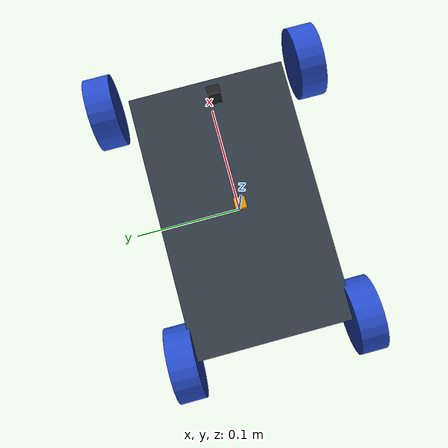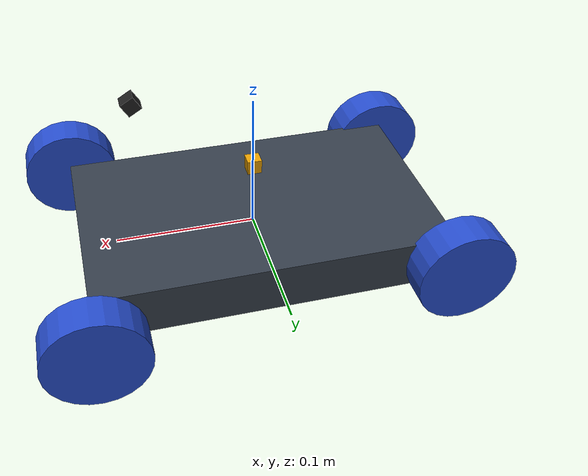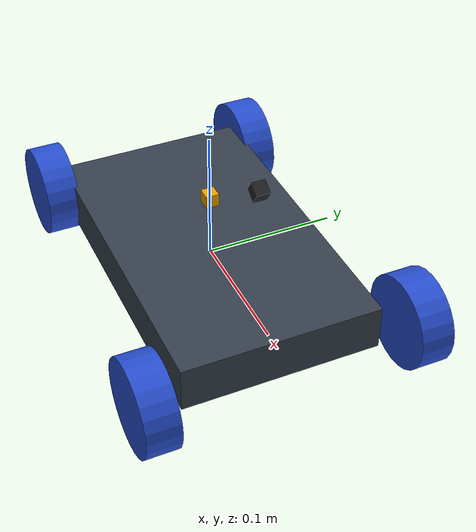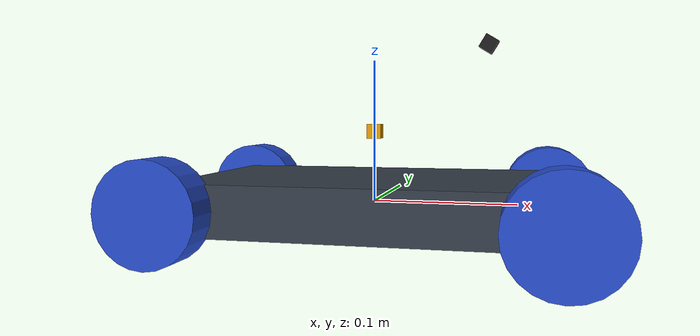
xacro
<?xml version="1.0" ?>
<robot name="rover" xmlns:xacro="http://www.ros.org/wiki/xacro">
  <material name="black">
    <color rgba="0.0 0.0 0.0 1.0"/>
  </material>
  <material name="blue">
    <color rgba="0.203125 0.23828125 0.28515625 1.0"/>
  </material>
  <material name="green">
    <color rgba="0.0 0.8 0.0 1.0"/>
  </material>
  <material name="grey">
    <color rgba="0.2 0.2 0.2 1.0"/>
  </material>
  <material name="orange">
    <color rgba="1.0 0.423529411765 0.0392156862745 1.0"/>
  </material>
  <material name="brown">
    <color rgba="0.870588235294 0.811764705882 0.764705882353 1.0"/>
  </material>
  <material name="red">
    <color rgba="0.80078125 0.12890625 0.1328125 1.0"/>
  </material>
  <material name="white">
    <color rgba="1.0 1.0 1.0 1.0"/>
  </material>

  <gazebo reference="link_chassis">
    <material>Gazebo/Orange</material>
  </gazebo>
  <gazebo reference="link_back_left_wheel">
    <material>Gazebo/Blue</material>
  </gazebo>
  <gazebo reference="link_back_right_wheel">
    <material>Gazebo/Blue</material>
  </gazebo>
  <gazebo reference="link_front_left_wheel">
    <material>Gazebo/Blue</material>
  </gazebo>
  <gazebo reference="link_front_right_wheel">
    <material>Gazebo/Blue</material>
  </gazebo>
  <gazebo reference="link_front_left_hinge">
    <material>Gazebo/Orange</material>
  </gazebo>
  <gazebo reference="link_front_right_hinge">
    <material>Gazebo/Orange</material>
  </gazebo>
  <gazebo reference="camera_link">
    <material>Gazebo/Black</material>
	</gazebo>

  <!-- camera -->
  <gazebo reference="camera_link">
    <sensor type="camera" name="main_cam">
      <update_rate>30.0</update_rate>
      <camera name="head">
        <horizontal_fov>1.777778</horizontal_fov>
        <image>
          <width>960</width>
          <height>616</height>
          <format>R8G8B8</format>
        </image>
        <clip>
          <near>0.02</near>
          <far>300</far>
        </clip>
        <noise>
          <type>gaussian</type>
          <!-- Noise is sampled independently per pixel on each frame.
               That pixel's noise value is added to each of its color
               channels, which at that point lie in the range [0,1]. -->
          <mean>0.0</mean>
          <stddev>0.007</stddev>
        </noise>
      </camera>
      <plugin name="camera_controller" filename="libgazebo_ros_camera.so">
        <alwaysOn>true</alwaysOn>
        <updateRate>60.0</updateRate>
        <cameraName>camera1</cameraName>
        <imageTopicName>image_raw</imageTopicName>
        <cameraInfoTopicName>camera_info</cameraInfoTopicName>
        <frameName>camera_link</frameName>
        <hackBaseline>0.07</hackBaseline>
        <distortionK1>0.0</distortionK1>
        <distortionK2>0.0</distortionK2>
        <distortionK3>0.0</distortionK3>
        <distortionT1>0.0</distortionT1>
        <distortionT2>0.0</distortionT2>
      </plugin>
    </sensor>
  </gazebo>

<!--imu plugin-->
<gazebo reference="imu_link">
<gravity>true</gravity>
<sensor name="imu_sensor" type="imu">
<always_on>true</always_on>
<update_rate>100</update_rate>
<visualize>true</visualize>
<topic>__default_topic__</topic>
<plugin filename="libgazebo_ros_imu_sensor.so" name="imu_plugin">
<topicName>imu</topicName>
<bodyName>imu_link</bodyName>
<updateRateHZ>10.0</updateRateHZ>
<gaussianNoise>0.0</gaussianNoise>
<xyzOffset>0 0 0</xyzOffset>
<rpyOffset>0 0 0</rpyOffset>
<frameName>imu_link</frameName>
<initialOrientationAsReference>false</initialOrientationAsReference>
</plugin>
<pose>0 0 0 0 0 0</pose>
</sensor>
</gazebo>

  <!-- chassis -->
  <link name="link_chassis">
    <!-- pose and inertial -->
    <pose>0 0 0 0 0 0</pose>
    <inertial>
      <mass value="0.796"/>
      <origin rpy="0 0 0" xyz="0 0 0"/>
      <inertia ixx="0.001573" ixy="0" ixz="0" iyy="0.004227" iyz="0" izz="0.005638"/>
    </inertial>
    <!-- body -->
    <collision name="collision_chassis">
      <geometry>
        <box size="0.25 0.15 0.035"/>
      </geometry>
    </collision>
    <visual>
      <origin rpy="0 0 0" xyz="0 0 0"/>
      <geometry>
        <box size="0.25 0.15 0.035"/>
      </geometry>
      <material name="blue"/>
    </visual>
  </link>

<!-- wheels & hinges -->

<!-- Front right -->
  <link name="link_front_right_wheel">
    <inertial>
      <mass value="0.049"/>
      <origin rpy="0 1.5707 1.5707" xyz="0 0 0"/>
      <inertia ixx="1.755e-5" ixy="0" ixz="0" iyy="1.755e-5" iyz="0" izz="3.001e-5"/>
    </inertial>
    <collision name="link_front_right_wheel_collision">
      <origin rpy="0  -1.5707  -1.5707" xyz="0 0 0"/>
      <geometry>
        <cylinder length="0.025" radius="0.035"/>
      </geometry>
    </collision>
    <visual name="link_front_right_wheel_visual">
      <origin rpy="0  -1.5707  -1.5707" xyz="0 0 0"/>
      <geometry>
        <cylinder length="0.025" radius="0.035"/>
      </geometry>
    </visual>
  </link>

  <link name="link_front_right_hinge">
    <inertial>
      <mass value="1e-5"/>
      <origin rpy="0 0 0" xyz="0 0 0"/>
      <inertia ixx="1e-6" ixy="0" ixz="0" iyy="1e-6" iyz="0" izz="1e-6"/>
    </inertial>
  </link>

  <joint name="joint_front_right_wheel" type="continuous">
    <origin rpy="0 0 0" xyz="0 -0.015 0"/>
    <child link="link_front_right_wheel"/>
    <parent link="link_front_right_hinge"/>
    <axis rpy="0 0 0" xyz="0 1 0"/>
    <limit effort="5" velocity="22"/>
    <joint_properties damping="0.0" friction="0.0"/>
  </joint>

 <joint name="joint_front_right_hinge" type="revolute">
    <origin rpy="0 0 0" xyz="0.125 -0.085 0.0"/>
    <child link="link_front_right_hinge"/>
    <parent link="link_chassis"/>
    <axis rpy="0 0 0" xyz="0 0 1"/>
    <limit  effort="5" velocity="10" lower="-0.43" upper="0.33"/>
    <joint_properties damping="0.0" friction="0.0"/>
  </joint>

<!-- front left -->

  <link name="link_front_left_wheel">
    <inertial>
      <mass value="0.049"/>
      <origin rpy="0 1.5707 1.5707" xyz="0 0 0"/>
      <inertia ixx="1.755e-5" ixy="0" ixz="0" iyy="1.755e-5" iyz="0" izz="3.001e-5"/>
    </inertial>
    <collision name="link_front_left_wheel_collision">
      <origin rpy="0 1.5707 1.5707" xyz="0 0 0"/>
      <geometry>
        <cylinder length="0.025" radius="0.035"/>
      </geometry>
    </collision>
    <visual name="link_front_left_wheel_visual">
      <origin rpy="0 1.5707 1.5707" xyz="0 0 0"/>
      <geometry>
        <cylinder length="0.025" radius="0.035"/>
      </geometry>
    </visual>
  </link>

  <link name="link_front_left_hinge">
    <inertial>
      <mass value="1e-5"/>
      <origin rpy="0 0 0" xyz="0 0 0"/>
      <inertia ixx="1e-6" ixy="0" ixz="0" iyy="1e-6" iyz="0" izz="1e-6"/>
    </inertial>
  </link>

  <joint name="joint_front_left_wheel" type="continuous">
    <origin rpy="0 0 0" xyz="0.0 0.015 0.0"/>
    <child link="link_front_left_wheel"/>
    <parent link="link_front_left_hinge"/>
    <axis rpy="0 0 0" xyz="0 1 0"/>
    <limit effort="5" velocity="22"/>
    <joint_properties damping="0.0" friction="0.0"/>
  </joint>

  <joint name="joint_front_left_hinge" type="revolute">
    <origin rpy="0 0 0" xyz="0.125 0.085 0.0"/>
    <child link="link_front_left_hinge"/>
    <parent link="link_chassis"/>
    <axis rpy="0 0 0" xyz="0 0 1"/>
    <limit effort="5" velocity="10" lower= "-0.33" upper="0.44"/>
    <joint_properties damping="0.0" friction="0.0"/>
  </joint>

<!-- back right -->
  <link name="link_back_right_wheel">
    <inertial>
      <mass value="0.049"/>
      <origin rpy="0 -1.5707 -1.5707" xyz="0 0 0"/>
      <inertia ixx="1.755e-5" ixy="0" ixz="0" iyy="1.755e-5" iyz="0" izz="3.001e-5"/>
    </inertial>
    <collision name="link_back_right_wheel_collision">
      <origin rpy="0 -1.5707 -1.5707" xyz="0 0 0"/>
      <geometry>
        <cylinder length="0.025" radius="0.035"/>
      </geometry>
    </collision>
    <visual name="link_back_right_wheel_visual">
      <origin rpy="0 -1.5707 -1.5707" xyz="0 0 0"/>
      <geometry>
        <cylinder length="0.025" radius="0.035"/>
      </geometry>
    </visual>
  </link>

  <joint name="joint_back_right_wheel" type="continuous">
    <origin rpy="0 0 0" xyz="-0.125 -0.085  0"/>
    <child link="link_back_right_wheel"/>
    <parent link="link_chassis"/>
    <axis rpy="0 0 0" xyz="0 1 0"/>
    <limit effort="5" velocity="22"/>
    <joint_properties damping="0.0" friction="0.0"/>
  </joint>

<!-- back left -->
  <link name="link_back_left_wheel">
    <inertial>
      <mass value="0.049"/>
      <origin rpy="0 1.5707 1.5707" xyz="0 0 0"/>
      <inertia ixx="1.755e-5" ixy="0" ixz="0" iyy="1.755e-5" iyz="0" izz="3.001e-5"/>
    </inertial>
    <collision name="link_back_left_wheel_collision">
      <origin rpy="0 1.5707 1.5707" xyz="0 0 0"/>
      <geometry>
        <cylinder length="0.025" radius="0.035"/>
      </geometry>
    </collision>
    <visual name="link_back_left_wheel_visual">
      <origin rpy="0 1.5707 1.5707" xyz="0 0 0"/>
      <geometry>
        <cylinder length="0.025" radius="0.035"/>
      </geometry>
    </visual>
  </link>

  <joint name="joint_back_left_wheel" type="continuous">
    <origin rpy="0 0 0" xyz="-0.125 0.085 0.0"/>
    <child link="link_back_left_wheel"/>
    <parent link="link_chassis"/>
    <axis rpy="0 0 0" xyz="0 1 0"/>
    <limit effort="5" velocity="22"/>
    <joint_properties damping="0.0" friction="0.0"/>
  </joint>

  <!-- Camera link & joint -->
  <link name="camera_link">
	<inertial>
		<mass value = "1e-5"/>
		<origin xyz="0 0 0" rpy="0 0 0"/>
		<inertia ixx="1e-6" ixy="0" ixz="0" iyy="1e-6" iyz="0" izz="1e-6" />
	</inertial>
    <collision name = "camera_link_collision">
      	<origin xyz="0 0 0" rpy="0 0 0"/>
      	<geometry>
    		<box size="0.01 0.01 0.01"/>
      	</geometry>
    </collision>
    <visual>
      	<origin xyz="0 0 0" rpy="0 0 0"/>
      	<geometry>
    		<box size="0.01 0.01 0.01"/>
      	</geometry>
     </visual>
  </link>

  <joint name="camera_joint" type="fixed">
	<origin xyz="0.08 0 0.11" rpy="0 0.55 0"/>
	<child link="camera_link"/>
	<parent link="link_chassis"/>
	<axis rpy = "0 0 0" xyz="0 1 0" />
  </joint>

<link name="imu_link">
<inertial>
<mass value = "1e-5"/>
<origin xyz="0 0 0" rpy="0 0 0"/>
<inertia ixx="1e-6" ixy="0" ixz="0" iyy="1e-6" iyz="0" izz="1e-6" />
</inertial>
<collision name = "imu_link_collision">
<origin xyz="0 0 0" rpy="0 0 0"/>
<geometry>
<box size="0.01 0.01 0.01"/>
</geometry>
</collision>
<visual name = "imu_link_visual">
<origin xyz="0 0 0" rpy="0 0 0"/>
<geometry>
<box size="0.01 0.01 0.01"/>
</geometry>
</visual>
</link>

<joint name="imu_joint" type="fixed">
<origin xyz="0.0 0 0.05" rpy="0 0 0"/>
<child link="imu_link"/>
<parent link="link_chassis"/>
<axis rpy = "0 0 0" xyz="0 1 0" />
</joint>

  <transmission name = "joint_back_left_wheel_trans">
  	<type> transmission_interface/SimpleTransmission </type>
        <joint name = "joint_back_left_wheel">
        	<hardwareInterface>VelocityJointInterface </hardwareInterface>
        </joint>
        <actuator name = "joint_back_left_wheel_motor">
                <hardwareInterface>VelocityJointInterface </hardwareInterface>
  		<mechanicalReduction>1</mechanicalReduction>
	</actuator>
  </transmission>

  <transmission name = "joint_back_right_wheel_trans">
  	<type> transmission_interface/SimpleTransmission </type>
        <joint name = "joint_back_right_wheel">
        	<hardwareInterface>VelocityJointInterface </hardwareInterface>
        </joint>
        <actuator name = "joint_back_right_wheel_motor">
                <hardwareInterface>VelocityJointInterface </hardwareInterface>
  		<mechanicalReduction>1</mechanicalReduction>
	</actuator>
  </transmission>

  <transmission name = "joint_front_left_hinge_trans">
  	<type> transmission_interface/SimpleTransmission </type>
        <joint name = "joint_front_left_hinge">
        	<hardwareInterface>PositionJointInterface </hardwareInterface>
        </joint>
        <actuator name = "joint_front_left_hinge_motor">
                <hardwareInterface>PositionJointInterface </hardwareInterface>
  		<mechanicalReduction>1</mechanicalReduction>
	</actuator>
  </transmission>

  <transmission name = "joint_front_right_hinge_trans">
  	<type> transmission_interface/SimpleTransmission </type>
        <joint name = "joint_front_right_hinge">
        	<hardwareInterface>PositionJointInterface </hardwareInterface>
        </joint>
        <actuator name = "joint_front_right_hinge_motor">
                <hardwareInterface>PositionJointInterface </hardwareInterface>
  		<mechanicalReduction>1</mechanicalReduction>
	</actuator>
  </transmission>

<gazebo>
  <plugin name="gazebo_ros_control" filename="libgazebo_ros_control.so">
    <robotNamespace>/rover</robotNamespace>
    <robotSimType>gazebo_ros_control/DefaultRobotHWSim</robotSimType>
  </plugin>
</gazebo>
</robot>
